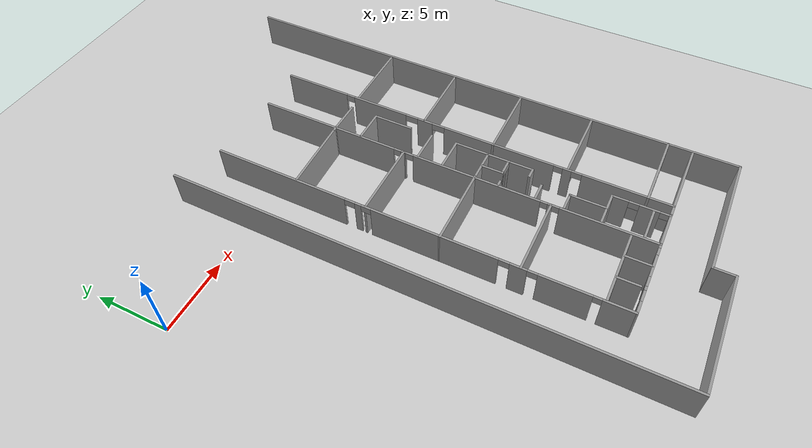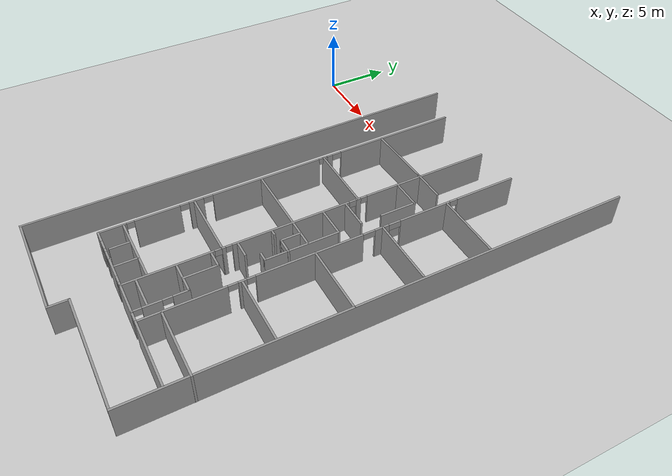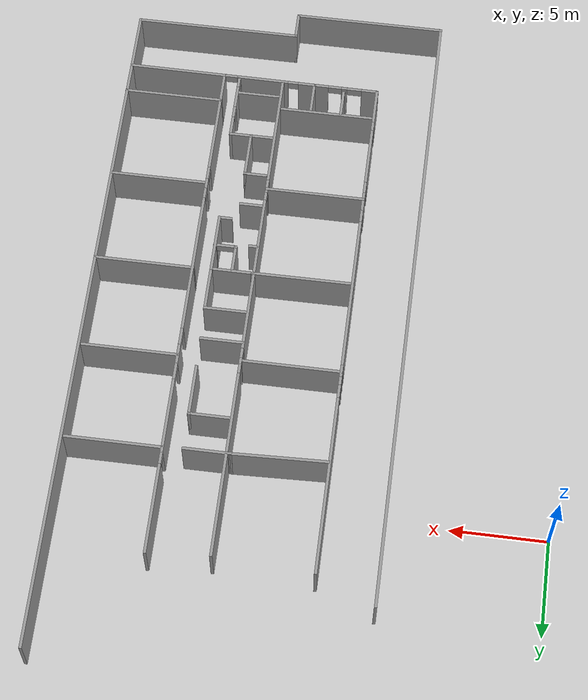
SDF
<sdf version="1.6">
 <world name="default">
  <model name="ground_plane">
   <static>1</static>
   <link name="link">
    <collision name="collision">
     <geometry><plane><normal>0 0 1</normal><size>100 100</size></plane></geometry>
     <surface><friction><ode><mu>100</mu><mu2>50</mu2></ode></friction></surface>
    </collision>
    <visual name="visual">
     <cast_shadows>0</cast_shadows>
     <geometry><plane><normal>0 0 1</normal><size>100 100</size></plane></geometry>
     <material>
      <script><uri>file://media/materials/scripts/gazebo.material</uri><name>Gazebo/Grey</name></script>
     </material>
    </visual>
   </link>
  </model>
  <model name="se1floor1">
   <pose>-5.19256 -0.852459 0 0 -0 0</pose>
   <link name="Wall_126">
    <pose>23.0675 -22.888 0 0 0 -0.005198</pose>
    <visual name="Wall_126_Visual_0">
     <pose>-6.2926 0 1.25 0 -0 0</pose>
     <geometry><box><size>0.915298 0.15 2.5</size></box></geometry>
     <material>
      <script><uri>file://media/materials/scripts/gazebo.material</uri><name>Gazebo/Grey</name></script>
      <ambient>1 1 1 1</ambient>
     </material>
     <meta><layer>0</layer></meta>
    </visual>
    <collision name="Wall_126_Collision_0">
     <geometry><box><size>0.915298 0.15 2.5</size></box></geometry>
     <pose>-6.2926 0 1.25 0 -0 0</pose>
    </collision>
    <visual name="Wall_126_Visual_1">
     <pose>-4.89972 0 1.25 0 -0 0</pose>
     <geometry><box><size>0.301764 0.15 2.5</size></box></geometry>
     <material>
      <script><uri>file://media/materials/scripts/gazebo.material</uri><name>Gazebo/Grey</name></script>
      <ambient>1 1 1 1</ambient>
     </material>
     <meta><layer>0</layer></meta>
    </visual>
    <collision name="Wall_126_Collision_1">
     <geometry><box><size>0.301764 0.15 2.5</size></box></geometry>
     <pose>-4.89972 0 1.25 0 -0 0</pose>
    </collision>
    <visual name="Wall_126_Visual_2">
     <pose>-3.21169 0 1.25 0 -0 0</pose>
     <geometry><box><size>1.6444 0.15 2.5</size></box></geometry>
     <material>
      <script><uri>file://media/materials/scripts/gazebo.material</uri><name>Gazebo/Grey</name></script>
      <ambient>1 1 1 1</ambient>
     </material>
     <meta><layer>0</layer></meta>
    </visual>
    <collision name="Wall_126_Collision_2">
     <geometry><box><size>1.6444 0.15 2.5</size></box></geometry>
     <pose>-3.21169 0 1.25 0 -0 0</pose>
    </collision>
    <visual name="Wall_126_Visual_3">
     <pose>-0.447541 0 1.25 0 -0 0</pose>
     <geometry><box><size>2.77781 0.15 2.5</size></box></geometry>
     <material>
      <script><uri>file://media/materials/scripts/gazebo.material</uri><name>Gazebo/Grey</name></script>
      <ambient>1 1 1 1</ambient>
     </material>
     <meta><layer>0</layer></meta>
    </visual>
    <collision name="Wall_126_Collision_3">
     <geometry><box><size>2.77781 0.15 2.5</size></box></geometry>
     <pose>-0.447541 0 1.25 0 -0 0</pose>
    </collision>
    <visual name="Wall_126_Visual_4">
     <pose>4.16859 0 1.25 0 -0 0</pose>
     <geometry><box><size>5.16332 0.15 2.5</size></box></geometry>
     <material>
      <script><uri>file://media/materials/scripts/gazebo.material</uri><name>Gazebo/Grey</name></script>
      <ambient>1 1 1 1</ambient>
     </material>
     <meta><layer>0</layer></meta>
    </visual>
    <collision name="Wall_126_Collision_4">
     <geometry><box><size>5.16332 0.15 2.5</size></box></geometry>
     <pose>4.16859 0 1.25 0 -0 0</pose>
    </collision>
    <visual name="Wall_126_Visual_5">
     <pose>-5.44278 0 2.25 0 -0 0</pose>
     <geometry><box><size>0.784347 0.15 0.5</size></box></geometry>
     <material>
      <script><uri>file://media/materials/scripts/gazebo.material</uri><name>Gazebo/Grey</name></script>
      <ambient>1 1 1 1</ambient>
     </material>
     <meta><layer>0</layer></meta>
    </visual>
    <collision name="Wall_126_Collision_5">
     <geometry><box><size>0.784347 0.15 0.5</size></box></geometry>
     <pose>-5.44278 0 2.25 0 -0 0</pose>
    </collision>
    <visual name="Wall_126_Visual_6">
     <pose>-4.39136 0 2.25 0 -0 0</pose>
     <geometry><box><size>0.714955 0.15 0.5</size></box></geometry>
     <material>
      <script><uri>file://media/materials/scripts/gazebo.material</uri><name>Gazebo/Grey</name></script>
      <ambient>1 1 1 1</ambient>
     </material>
     <meta><layer>0</layer></meta>
    </visual>
    <collision name="Wall_126_Collision_6">
     <geometry><box><size>0.714955 0.15 0.5</size></box></geometry>
     <pose>-4.39136 0 2.25 0 -0 0</pose>
    </collision>
    <visual name="Wall_126_Visual_7">
     <pose>-2.11297 0 2.25 0 -0 0</pose>
     <geometry><box><size>0.553041 0.15 0.5</size></box></geometry>
     <material>
      <script><uri>file://media/materials/scripts/gazebo.material</uri><name>Gazebo/Grey</name></script>
      <ambient>1 1 1 1</ambient>
     </material>
     <meta><layer>0</layer></meta>
    </visual>
    <collision name="Wall_126_Collision_7">
     <geometry><box><size>0.553041 0.15 0.5</size></box></geometry>
     <pose>-2.11297 0 2.25 0 -0 0</pose>
    </collision>
    <visual name="Wall_126_Visual_8">
     <pose>1.26415 0 2.25 0 -0 0</pose>
     <geometry><box><size>0.645563 0.15 0.5</size></box></geometry>
     <material>
      <script><uri>file://media/materials/scripts/gazebo.material</uri><name>Gazebo/Grey</name></script>
      <ambient>1 1 1 1</ambient>
     </material>
     <meta><layer>0</layer></meta>
    </visual>
    <collision name="Wall_126_Collision_8">
     <geometry><box><size>0.645563 0.15 0.5</size></box></geometry>
     <pose>1.26415 0 2.25 0 -0 0</pose>
    </collision>
   </link>
   <link name="Wall_129">
    <pose>16.3925 -9.03021 0 0 -0 1.5708</pose>
    <visual name="Wall_129_Visual_0">
     <pose>-12.8861 0 1.25 0 -0 0</pose>
     <geometry><box><size>1.97778 0.15 2.5</size></box></geometry>
     <material>
      <script><uri>file://media/materials/scripts/gazebo.material</uri><name>Gazebo/Grey</name></script>
      <ambient>1 1 1 1</ambient>
     </material>
     <meta><layer>0</layer></meta>
    </visual>
    <collision name="Wall_129_Collision_0">
     <geometry><box><size>1.97778 0.15 2.5</size></box></geometry>
     <pose>-12.8861 0 1.25 0 -0 0</pose>
    </collision>
    <visual name="Wall_129_Visual_1">
     <pose>-9.74712 0 1.25 0 -0 0</pose>
     <geometry><box><size>3.24038 0.15 2.5</size></box></geometry>
     <material>
      <script><uri>file://media/materials/scripts/gazebo.material</uri><name>Gazebo/Grey</name></script>
      <ambient>1 1 1 1</ambient>
     </material>
     <meta><layer>0</layer></meta>
    </visual>
    <collision name="Wall_129_Collision_1">
     <geometry><box><size>3.24038 0.15 2.5</size></box></geometry>
     <pose>-9.74712 0 1.25 0 -0 0</pose>
    </collision>
    <visual name="Wall_129_Visual_2">
     <pose>-6.94831 0 1.25 0 -0 0</pose>
     <geometry><box><size>1.0661 0.15 2.5</size></box></geometry>
     <material>
      <script><uri>file://media/materials/scripts/gazebo.material</uri><name>Gazebo/Grey</name></script>
      <ambient>1 1 1 1</ambient>
     </material>
     <meta><layer>0</layer></meta>
    </visual>
    <collision name="Wall_129_Collision_2">
     <geometry><box><size>1.0661 0.15 2.5</size></box></geometry>
     <pose>-6.94831 0 1.25 0 -0 0</pose>
    </collision>
    <visual name="Wall_129_Visual_3">
     <pose>-1.54153 0 1.25 0 -0 0</pose>
     <geometry><box><size>8.36381 0.15 2.5</size></box></geometry>
     <material>
      <script><uri>file://media/materials/scripts/gazebo.material</uri><name>Gazebo/Grey</name></script>
      <ambient>1 1 1 1</ambient>
     </material>
     <meta><layer>0</layer></meta>
    </visual>
    <collision name="Wall_129_Collision_3">
     <geometry><box><size>8.36381 0.15 2.5</size></box></geometry>
     <pose>-1.54153 0 1.25 0 -0 0</pose>
    </collision>
    <visual name="Wall_129_Visual_4">
     <pose>3.52985 0 1.25 0 -0 0</pose>
     <geometry><box><size>0.441575 0.15 2.5</size></box></geometry>
     <material>
      <script><uri>file://media/materials/scripts/gazebo.material</uri><name>Gazebo/Grey</name></script>
      <ambient>1 1 1 1</ambient>
     </material>
     <meta><layer>0</layer></meta>
    </visual>
    <collision name="Wall_129_Collision_4">
     <geometry><box><size>0.441575 0.15 2.5</size></box></geometry>
     <pose>3.52985 0 1.25 0 -0 0</pose>
    </collision>
    <visual name="Wall_129_Visual_5">
     <pose>9.1703 0 1.25 0 -0 0</pose>
     <geometry><box><size>9.4094 0.15 2.5</size></box></geometry>
     <material>
      <script><uri>file://media/materials/scripts/gazebo.material</uri><name>Gazebo/Grey</name></script>
      <ambient>1 1 1 1</ambient>
     </material>
     <meta><layer>0</layer></meta>
    </visual>
    <collision name="Wall_129_Collision_5">
     <geometry><box><size>9.4094 0.15 2.5</size></box></geometry>
     <pose>9.1703 0 1.25 0 -0 0</pose>
    </collision>
    <visual name="Wall_129_Visual_6">
     <pose>-11.6323 0 2.25 0 -0 0</pose>
     <geometry><box><size>0.52991 0.15 0.5</size></box></geometry>
     <material>
      <script><uri>file://media/materials/scripts/gazebo.material</uri><name>Gazebo/Grey</name></script>
      <ambient>1 1 1 1</ambient>
     </material>
     <meta><layer>0</layer></meta>
    </visual>
    <collision name="Wall_129_Collision_6">
     <geometry><box><size>0.52991 0.15 0.5</size></box></geometry>
     <pose>-11.6323 0 2.25 0 -0 0</pose>
    </collision>
    <visual name="Wall_129_Visual_7">
     <pose>-7.80415 0 2.25 0 -0 0</pose>
     <geometry><box><size>0.645563 0.15 0.5</size></box></geometry>
     <material>
      <script><uri>file://media/materials/scripts/gazebo.material</uri><name>Gazebo/Grey</name></script>
      <ambient>1 1 1 1</ambient>
     </material>
     <meta><layer>0</layer></meta>
    </visual>
    <collision name="Wall_129_Collision_7">
     <geometry><box><size>0.645563 0.15 0.5</size></box></geometry>
     <pose>-7.80415 0 2.25 0 -0 0</pose>
    </collision>
    <visual name="Wall_129_Visual_8">
     <pose>-6.06935 0 2.25 0 -0 0</pose>
     <geometry><box><size>0.691825 0.15 0.5</size></box></geometry>
     <material>
      <script><uri>file://media/materials/scripts/gazebo.material</uri><name>Gazebo/Grey</name></script>
      <ambient>1 1 1 1</ambient>
     </material>
     <meta><layer>0</layer></meta>
    </visual>
    <collision name="Wall_129_Collision_8">
     <geometry><box><size>0.691825 0.15 0.5</size></box></geometry>
     <pose>-6.06935 0 2.25 0 -0 0</pose>
    </collision>
    <visual name="Wall_129_Visual_9">
     <pose>2.97472 0 2.25 0 -0 0</pose>
     <geometry><box><size>0.668694 0.15 0.5</size></box></geometry>
     <material>
      <script><uri>file://media/materials/scripts/gazebo.material</uri><name>Gazebo/Grey</name></script>
      <ambient>1 1 1 1</ambient>
     </material>
     <meta><layer>0</layer></meta>
    </visual>
    <collision name="Wall_129_Collision_9">
     <geometry><box><size>0.668694 0.15 0.5</size></box></geometry>
     <pose>2.97472 0 2.25 0 -0 0</pose>
    </collision>
    <visual name="Wall_129_Visual_10">
     <pose>4.10812 0 2.25 0 -0 0</pose>
     <geometry><box><size>0.714955 0.15 0.5</size></box></geometry>
     <material>
      <script><uri>file://media/materials/scripts/gazebo.material</uri><name>Gazebo/Grey</name></script>
      <ambient>1 1 1 1</ambient>
     </material>
     <meta><layer>0</layer></meta>
    </visual>
    <collision name="Wall_129_Collision_10">
     <geometry><box><size>0.714955 0.15 0.5</size></box></geometry>
     <pose>4.10812 0 2.25 0 -0 0</pose>
    </collision>
   </link>
   <link name="Wall_132">
    <pose>21.5188 -9.17584 0 0 0 -1.5708</pose>
    <visual name="Wall_132_Visual_0">
     <pose>-8.8163 0 1.25 0 -0 0</pose>
     <geometry><box><size>9.86739 0.15 2.5</size></box></geometry>
     <material>
      <script><uri>file://media/materials/scripts/gazebo.material</uri><name>Gazebo/Grey</name></script>
      <ambient>1 1 1 1</ambient>
     </material>
     <meta><layer>0</layer></meta>
    </visual>
    <collision name="Wall_132_Collision_0">
     <geometry><box><size>9.86739 0.15 2.5</size></box></geometry>
     <pose>-8.8163 0 1.25 0 -0 0</pose>
    </collision>
    <visual name="Wall_132_Visual_1">
     <pose>-3.19552 0 1.25 0 -0 0</pose>
     <geometry><box><size>0.360618 0.15 2.5</size></box></geometry>
     <material>
      <script><uri>file://media/materials/scripts/gazebo.material</uri><name>Gazebo/Grey</name></script>
      <ambient>1 1 1 1</ambient>
     </material>
     <meta><layer>0</layer></meta>
    </visual>
    <collision name="Wall_132_Collision_1">
     <geometry><box><size>0.360618 0.15 2.5</size></box></geometry>
     <pose>-3.19552 0 1.25 0 -0 0</pose>
    </collision>
    <visual name="Wall_132_Visual_2">
     <pose>1.88165 0 1.25 0 -0 0</pose>
     <geometry><box><size>8.7339 0.15 2.5</size></box></geometry>
     <material>
      <script><uri>file://media/materials/scripts/gazebo.material</uri><name>Gazebo/Grey</name></script>
      <ambient>1 1 1 1</ambient>
     </material>
     <meta><layer>0</layer></meta>
    </visual>
    <collision name="Wall_132_Collision_2">
     <geometry><box><size>8.7339 0.15 2.5</size></box></geometry>
     <pose>1.88165 0 1.25 0 -0 0</pose>
    </collision>
    <visual name="Wall_132_Visual_3">
     <pose>6.83738 0 1.25 0 -0 0</pose>
     <geometry><box><size>0.256532 0.15 2.5</size></box></geometry>
     <material>
      <script><uri>file://media/materials/scripts/gazebo.material</uri><name>Gazebo/Grey</name></script>
      <ambient>1 1 1 1</ambient>
     </material>
     <meta><layer>0</layer></meta>
    </visual>
    <collision name="Wall_132_Collision_3">
     <geometry><box><size>0.256532 0.15 2.5</size></box></geometry>
     <pose>6.83738 0 1.25 0 -0 0</pose>
    </collision>
    <visual name="Wall_132_Visual_4">
     <pose>10.6112 0 1.25 0 -0 0</pose>
     <geometry><box><size>6.27757 0.15 2.5</size></box></geometry>
     <material>
      <script><uri>file://media/materials/scripts/gazebo.material</uri><name>Gazebo/Grey</name></script>
      <ambient>1 1 1 1</ambient>
     </material>
     <meta><layer>0</layer></meta>
    </visual>
    <collision name="Wall_132_Collision_4">
     <geometry><box><size>6.27757 0.15 2.5</size></box></geometry>
     <pose>10.6112 0 1.25 0 -0 0</pose>
    </collision>
    <visual name="Wall_132_Visual_5">
     <pose>-3.62922 0 2.25 0 -0 0</pose>
     <geometry><box><size>0.50678 0.15 0.5</size></box></geometry>
     <material>
      <script><uri>file://media/materials/scripts/gazebo.material</uri><name>Gazebo/Grey</name></script>
      <ambient>1 1 1 1</ambient>
     </material>
     <meta><layer>0</layer></meta>
    </visual>
    <collision name="Wall_132_Collision_5">
     <geometry><box><size>0.50678 0.15 0.5</size></box></geometry>
     <pose>-3.62922 0 2.25 0 -0 0</pose>
    </collision>
    <visual name="Wall_132_Visual_6">
     <pose>-2.75025 0 2.25 0 -0 0</pose>
     <geometry><box><size>0.52991 0.15 0.5</size></box></geometry>
     <material>
      <script><uri>file://media/materials/scripts/gazebo.material</uri><name>Gazebo/Grey</name></script>
      <ambient>1 1 1 1</ambient>
     </material>
     <meta><layer>0</layer></meta>
    </visual>
    <collision name="Wall_132_Collision_6">
     <geometry><box><size>0.52991 0.15 0.5</size></box></geometry>
     <pose>-2.75025 0 2.25 0 -0 0</pose>
    </collision>
    <visual name="Wall_132_Visual_7">
     <pose>6.47886 0 2.25 0 -0 0</pose>
     <geometry><box><size>0.460518 0.15 0.5</size></box></geometry>
     <material>
      <script><uri>file://media/materials/scripts/gazebo.material</uri><name>Gazebo/Grey</name></script>
      <ambient>1 1 1 1</ambient>
     </material>
     <meta><layer>0</layer></meta>
    </visual>
    <collision name="Wall_132_Collision_7">
     <geometry><box><size>0.460518 0.15 0.5</size></box></geometry>
     <pose>6.47886 0 2.25 0 -0 0</pose>
    </collision>
    <visual name="Wall_132_Visual_8">
     <pose>7.21904 0 2.25 0 -0 0</pose>
     <geometry><box><size>0.50678 0.15 0.5</size></box></geometry>
     <material>
      <script><uri>file://media/materials/scripts/gazebo.material</uri><name>Gazebo/Grey</name></script>
      <ambient>1 1 1 1</ambient>
     </material>
     <meta><layer>0</layer></meta>
    </visual>
    <collision name="Wall_132_Collision_8">
     <geometry><box><size>0.50678 0.15 0.5</size></box></geometry>
     <pose>7.21904 0 2.25 0 -0 0</pose>
    </collision>
   </link>
   <link name="Wall_134">
    <pose>24.7154 -9.06281 0 0 0 -1.5708</pose>
    <visual name="Wall_134_Visual_0">
     <pose>-11.5152 0 1.25 0 -0 0</pose>
     <geometry><box><size>4.71959 0.15 2.5</size></box></geometry>
     <material>
      <script><uri>file://media/materials/scripts/gazebo.material</uri><name>Gazebo/Grey</name></script>
      <ambient>1 1 1 1</ambient>
     </material>
     <meta><layer>0</layer></meta>
    </visual>
    <collision name="Wall_134_Collision_0">
     <geometry><box><size>4.71959 0.15 2.5</size></box></geometry>
     <pose>-11.5152 0 1.25 0 -0 0</pose>
    </collision>
    <visual name="Wall_134_Visual_1">
     <pose>-6.52963 0 1.25 0 -0 0</pose>
     <geometry><box><size>4.01762 0.15 2.5</size></box></geometry>
     <material>
      <script><uri>file://media/materials/scripts/gazebo.material</uri><name>Gazebo/Grey</name></script>
      <ambient>1 1 1 1</ambient>
     </material>
     <meta><layer>0</layer></meta>
    </visual>
    <collision name="Wall_134_Collision_1">
     <geometry><box><size>4.01762 0.15 2.5</size></box></geometry>
     <pose>-6.52963 0 1.25 0 -0 0</pose>
    </collision>
    <visual name="Wall_134_Visual_2">
     <pose>-3.08023 0 1.25 0 -0 0</pose>
     <geometry><box><size>1.0812 0.15 2.5</size></box></geometry>
     <material>
      <script><uri>file://media/materials/scripts/gazebo.material</uri><name>Gazebo/Grey</name></script>
      <ambient>1 1 1 1</ambient>
     </material>
     <meta><layer>0</layer></meta>
    </visual>
    <collision name="Wall_134_Collision_2">
     <geometry><box><size>1.0812 0.15 2.5</size></box></geometry>
     <pose>-3.08023 0 1.25 0 -0 0</pose>
    </collision>
    <visual name="Wall_134_Visual_3">
     <pose>2.23378 0 1.25 0 -0 0</pose>
     <geometry><box><size>7.74681 0.15 2.5</size></box></geometry>
     <material>
      <script><uri>file://media/materials/scripts/gazebo.material</uri><name>Gazebo/Grey</name></script>
      <ambient>1 1 1 1</ambient>
     </material>
     <meta><layer>0</layer></meta>
    </visual>
    <collision name="Wall_134_Collision_3">
     <geometry><box><size>7.74681 0.15 2.5</size></box></geometry>
     <pose>2.23378 0 1.25 0 -0 0</pose>
    </collision>
    <visual name="Wall_134_Visual_4">
     <pose>6.99667 0 1.25 0 -0 0</pose>
     <geometry><box><size>0.580358 0.15 2.5</size></box></geometry>
     <material>
      <script><uri>file://media/materials/scripts/gazebo.material</uri><name>Gazebo/Grey</name></script>
      <ambient>1 1 1 1</ambient>
     </material>
     <meta><layer>0</layer></meta>
    </visual>
    <collision name="Wall_134_Collision_4">
     <geometry><box><size>0.580358 0.15 2.5</size></box></geometry>
     <pose>6.99667 0 1.25 0 -0 0</pose>
    </collision>
    <visual name="Wall_134_Visual_5">
     <pose>10.9268 0 1.25 0 -0 0</pose>
     <geometry><box><size>5.89633 0.15 2.5</size></box></geometry>
     <material>
      <script><uri>file://media/materials/scripts/gazebo.material</uri><name>Gazebo/Grey</name></script>
      <ambient>1 1 1 1</ambient>
     </material>
     <meta><layer>0</layer></meta>
    </visual>
    <collision name="Wall_134_Collision_5">
     <geometry><box><size>5.89633 0.15 2.5</size></box></geometry>
     <pose>10.9268 0 1.25 0 -0 0</pose>
    </collision>
    <visual name="Wall_134_Visual_6">
     <pose>-8.84693 0 2.25 0 -0 0</pose>
     <geometry><box><size>0.616972 0.15 0.5</size></box></geometry>
     <material>
      <script><uri>file://media/materials/scripts/gazebo.material</uri><name>Gazebo/Grey</name></script>
      <ambient>1 1 1 1</ambient>
     </material>
     <meta><layer>0</layer></meta>
    </visual>
    <collision name="Wall_134_Collision_6">
     <geometry><box><size>0.616972 0.15 0.5</size></box></geometry>
     <pose>-8.84693 0 2.25 0 -0 0</pose>
    </collision>
    <visual name="Wall_134_Visual_7">
     <pose>-4.07083 0 2.25 0 -0 0</pose>
     <geometry><box><size>0.9 0.15 0.5</size></box></geometry>
     <material>
      <script><uri>file://media/materials/scripts/gazebo.material</uri><name>Gazebo/Grey</name></script>
      <ambient>1 1 1 1</ambient>
     </material>
     <meta><layer>0</layer></meta>
    </visual>
    <collision name="Wall_134_Collision_7">
     <geometry><box><size>0.9 0.15 0.5</size></box></geometry>
     <pose>-4.07083 0 2.25 0 -0 0</pose>
    </collision>
    <visual name="Wall_134_Visual_8">
     <pose>-2.08963 0 2.25 0 -0 0</pose>
     <geometry><box><size>0.9 0.15 0.5</size></box></geometry>
     <material>
      <script><uri>file://media/materials/scripts/gazebo.material</uri><name>Gazebo/Grey</name></script>
      <ambient>1 1 1 1</ambient>
     </material>
     <meta><layer>0</layer></meta>
    </visual>
    <collision name="Wall_134_Collision_8">
     <geometry><box><size>0.9 0.15 0.5</size></box></geometry>
     <pose>-2.08963 0 2.25 0 -0 0</pose>
    </collision>
    <visual name="Wall_134_Visual_9">
     <pose>6.40684 0 2.25 0 -0 0</pose>
     <geometry><box><size>0.599302 0.15 0.5</size></box></geometry>
     <material>
      <script><uri>file://media/materials/scripts/gazebo.material</uri><name>Gazebo/Grey</name></script>
      <ambient>1 1 1 1</ambient>
     </material>
     <meta><layer>0</layer></meta>
    </visual>
    <collision name="Wall_134_Collision_9">
     <geometry><box><size>0.599302 0.15 0.5</size></box></geometry>
     <pose>6.40684 0 2.25 0 -0 0</pose>
    </collision>
    <visual name="Wall_134_Visual_10">
     <pose>7.63276 0 2.25 0 -0 0</pose>
     <geometry><box><size>0.691825 0.15 0.5</size></box></geometry>
     <material>
      <script><uri>file://media/materials/scripts/gazebo.material</uri><name>Gazebo/Grey</name></script>
      <ambient>1 1 1 1</ambient>
     </material>
     <meta><layer>0</layer></meta>
    </visual>
    <collision name="Wall_134_Collision_10">
     <geometry><box><size>0.691825 0.15 0.5</size></box></geometry>
     <pose>7.63276 0 2.25 0 -0 0</pose>
    </collision>
   </link>
   <link name="Wall_137">
    <collision name="Wall_137_Collision">
     <geometry><box><size>5.02582 0.15 2.5</size></box></geometry>
     <pose>0 0 1.25 0 -0 0</pose>
    </collision>
    <visual name="Wall_137_Visual">
     <pose>0 0 1.25 0 -0 0</pose>
     <geometry><box><size>5.02582 0.15 2.5</size></box></geometry>
     <material>
      <script><uri>file://media/materials/scripts/gazebo.material</uri><name>Gazebo/Grey</name></script>
      <ambient>1 1 1 1</ambient>
     </material>
     <meta><layer>0</layer></meta>
    </visual>
    <pose>18.9104 -0.95308 0 0 -0 0.033214</pose>
   </link>
   <link name="Wall_139">
    <collision name="Wall_139_Collision">
     <geometry><box><size>5.25 0.15 2.5</size></box></geometry>
     <pose>0 0 1.25 0 -0 0</pose>
    </collision>
    <visual name="Wall_139_Visual">
     <pose>0 0 1.25 0 -0 0</pose>
     <geometry><box><size>5.25 0.15 2.5</size></box></geometry>
     <material>
      <script><uri>file://media/materials/scripts/gazebo.material</uri><name>Gazebo/Grey</name></script>
      <ambient>1 1 1 1</ambient>
     </material>
     <meta><layer>0</layer></meta>
    </visual>
    <pose>18.9425 -5.99765 0 0 -0 0</pose>
   </link>
   <link name="Wall_141">
    <collision name="Wall_141_Collision">
     <geometry><box><size>5.3657 0.15 2.5</size></box></geometry>
     <pose>0 0 1.25 0 -0 0</pose>
    </collision>
    <visual name="Wall_141_Visual">
     <pose>0 0 1.25 0 -0 0</pose>
     <geometry><box><size>5.3657 0.15 2.5</size></box></geometry>
     <material>
      <script><uri>file://media/materials/scripts/gazebo.material</uri><name>Gazebo/Grey</name></script>
      <ambient>1 1 1 1</ambient>
     </material>
     <meta><layer>0</layer></meta>
    </visual>
    <pose>19.0003 -11.0311 0 0 -0 0.004435</pose>
   </link>
   <link name="Wall_143">
    <collision name="Wall_143_Collision">
     <geometry><box><size>5.25 0.15 2.5</size></box></geometry>
     <pose>0 0 1.25 0 -0 0</pose>
    </collision>
    <visual name="Wall_143_Visual">
     <pose>0 0 1.25 0 -0 0</pose>
     <geometry><box><size>5.25 0.15 2.5</size></box></geometry>
     <material>
      <script><uri>file://media/materials/scripts/gazebo.material</uri><name>Gazebo/Grey</name></script>
      <ambient>1 1 1 1</ambient>
     </material>
     <meta><layer>0</layer></meta>
    </visual>
    <pose>18.9537 -16.1141 0 0 -0 0</pose>
   </link>
   <link name="Wall_146">
    <collision name="Wall_146_Collision">
     <geometry><box><size>5 0.15 2.5</size></box></geometry>
     <pose>0 0 1.25 0 -0 0</pose>
    </collision>
    <visual name="Wall_146_Visual">
     <pose>0 0 1.25 0 -0 0</pose>
     <geometry><box><size>5 0.15 2.5</size></box></geometry>
     <material>
      <script><uri>file://media/materials/scripts/gazebo.material</uri><name>Gazebo/Grey</name></script>
      <ambient>1 1 1 1</ambient>
     </material>
     <meta><layer>0</layer></meta>
    </visual>
    <pose>18.9294 -21.1528 0 0 -0 0</pose>
   </link>
   <link name="Wall_150">
    <collision name="Wall_150_Collision">
     <geometry><box><size>5 0.15 2.5</size></box></geometry>
     <pose>0 0 1.25 0 -0 0</pose>
    </collision>
    <visual name="Wall_150_Visual">
     <pose>0 0 1.25 0 -0 0</pose>
     <geometry><box><size>5 0.15 2.5</size></box></geometry>
     <material>
      <script><uri>file://media/materials/scripts/gazebo.material</uri><name>Gazebo/Grey</name></script>
      <ambient>1 1 1 1</ambient>
     </material>
     <meta><layer>0</layer></meta>
    </visual>
    <pose>27.1987 -0.789925 0 0 -0 0</pose>
   </link>
   <link name="Wall_152">
    <collision name="Wall_152_Collision">
     <geometry><box><size>5 0.15 2.5</size></box></geometry>
     <pose>0 0 1.25 0 -0 0</pose>
    </collision>
    <visual name="Wall_152_Visual">
     <pose>0 0 1.25 0 -0 0</pose>
     <geometry><box><size>5 0.15 2.5</size></box></geometry>
     <material>
      <script><uri>file://media/materials/scripts/gazebo.material</uri><name>Gazebo/Grey</name></script>
      <ambient>1 1 1 1</ambient>
     </material>
     <meta><layer>0</layer></meta>
    </visual>
    <pose>27.1987 -5.91627 0 0 -0 0</pose>
   </link>
   <link name="Wall_154">
    <collision name="Wall_154_Collision">
     <geometry><box><size>5 0.15 2.5</size></box></geometry>
     <pose>0 0 1.25 0 -0 0</pose>
    </collision>
    <visual name="Wall_154_Visual">
     <pose>0 0 1.25 0 -0 0</pose>
     <geometry><box><size>5 0.15 2.5</size></box></geometry>
     <material>
      <script><uri>file://media/materials/scripts/gazebo.material</uri><name>Gazebo/Grey</name></script>
      <ambient>1 1 1 1</ambient>
     </material>
     <meta><layer>0</layer></meta>
    </visual>
    <pose>27.28 -16.0876 0 0 -0 0</pose>
   </link>
   <link name="Wall_156">
    <collision name="Wall_156_Collision">
     <geometry><box><size>5.25 0.15 2.5</size></box></geometry>
     <pose>0 0 1.25 0 -0 0</pose>
    </collision>
    <visual name="Wall_156_Visual">
     <pose>0 0 1.25 0 -0 0</pose>
     <geometry><box><size>5.25 0.15 2.5</size></box></geometry>
     <material>
      <script><uri>file://media/materials/scripts/gazebo.material</uri><name>Gazebo/Grey</name></script>
      <ambient>1 1 1 1</ambient>
     </material>
     <meta><layer>0</layer></meta>
    </visual>
    <pose>27.2423 -10.9613 0 0 -0 0</pose>
   </link>
   <link name="Wall_158">
    <collision name="Wall_158_Collision">
     <geometry><box><size>5.25 0.15 2.5</size></box></geometry>
     <pose>0 0 1.25 0 -0 0</pose>
    </collision>
    <visual name="Wall_158_Visual">
     <pose>0 0 1.25 0 -0 0</pose>
     <geometry><box><size>5.25 0.15 2.5</size></box></geometry>
     <material>
      <script><uri>file://media/materials/scripts/gazebo.material</uri><name>Gazebo/Grey</name></script>
      <ambient>1 1 1 1</ambient>
     </material>
     <meta><layer>0</layer></meta>
    </visual>
    <pose>27.2625 -21.2953 0 0 -0 0</pose>
   </link>
   <link name="Wall_160">
    <collision name="Wall_160_Collision">
     <geometry><box><size>1.25 0.15 2.5</size></box></geometry>
     <pose>0 0 1.25 0 -0 0</pose>
    </collision>
    <visual name="Wall_160_Visual">
     <pose>0 0 1.25 0 -0 0</pose>
     <geometry><box><size>1.25 0.15 2.5</size></box></geometry>
     <material>
      <script><uri>file://media/materials/scripts/gazebo.material</uri><name>Gazebo/Grey</name></script>
      <ambient>1 1 1 1</ambient>
     </material>
     <meta><layer>0</layer></meta>
    </visual>
    <pose>22.2316 -16.9013 0 0 -0 0</pose>
   </link>
   <link name="Wall_161">
    <collision name="Wall_161_Collision">
     <geometry><box><size>2.5 0.15 2.5</size></box></geometry>
     <pose>0 0 1.25 0 -0 0</pose>
    </collision>
    <visual name="Wall_161_Visual">
     <pose>0 0 1.25 0 -0 0</pose>
     <geometry><box><size>2.5 0.15 2.5</size></box></geometry>
     <material>
      <script><uri>file://media/materials/scripts/gazebo.material</uri><name>Gazebo/Grey</name></script>
      <ambient>1 1 1 1</ambient>
     </material>
     <meta><layer>0</layer></meta>
    </visual>
    <pose>22.7816 -18.0763 0 0 0 -1.5708</pose>
   </link>
   <link name="Wall_162">
    <collision name="Wall_162_Collision">
     <geometry><box><size>1.25 0.15 2.5</size></box></geometry>
     <pose>0 0 1.25 0 -0 0</pose>
    </collision>
    <visual name="Wall_162_Visual">
     <pose>0 0 1.25 0 -0 0</pose>
     <geometry><box><size>1.25 0.15 2.5</size></box></geometry>
     <material>
      <script><uri>file://media/materials/scripts/gazebo.material</uri><name>Gazebo/Grey</name></script>
      <ambient>1 1 1 1</ambient>
     </material>
     <meta><layer>0</layer></meta>
    </visual>
    <pose>23.3316 -19.2513 0 0 -0 0</pose>
   </link>
   <link name="Wall_163">
    <pose>23.8816 -21.0513 0 0 0 -1.5708</pose>
    <visual name="Wall_163_Visual_0">
     <pose>-1.31066 0 1.25 0 -0 0</pose>
     <geometry><box><size>1.12869 0.15 2.5</size></box></geometry>
     <material>
      <script><uri>file://media/materials/scripts/gazebo.material</uri><name>Gazebo/Grey</name></script>
      <ambient>1 1 1 1</ambient>
     </material>
     <meta><layer>0</layer></meta>
    </visual>
    <collision name="Wall_163_Collision_0">
     <geometry><box><size>1.12869 0.15 2.5</size></box></geometry>
     <pose>-1.31066 0 1.25 0 -0 0</pose>
    </collision>
    <visual name="Wall_163_Visual_1">
     <pose>0.559519 0 1.25 0 -0 0</pose>
     <geometry><box><size>1.27428 0.15 2.5</size></box></geometry>
     <material>
      <script><uri>file://media/materials/scripts/gazebo.material</uri><name>Gazebo/Grey</name></script>
      <ambient>1 1 1 1</ambient>
     </material>
     <meta><layer>0</layer></meta>
    </visual>
    <collision name="Wall_163_Collision_1">
     <geometry><box><size>1.27428 0.15 2.5</size></box></geometry>
     <pose>0.559519 0 1.25 0 -0 0</pose>
    </collision>
    <visual name="Wall_163_Visual_2">
     <pose>1.81235 0 1.25 0 -0 0</pose>
     <geometry><box><size>0.125303 0.15 2.5</size></box></geometry>
     <material>
      <script><uri>file://media/materials/scripts/gazebo.material</uri><name>Gazebo/Grey</name></script>
      <ambient>1 1 1 1</ambient>
     </material>
     <meta><layer>0</layer></meta>
    </visual>
    <collision name="Wall_163_Collision_2">
     <geometry><box><size>0.125303 0.15 2.5</size></box></geometry>
     <pose>1.81235 0 1.25 0 -0 0</pose>
    </collision>
    <visual name="Wall_163_Visual_3">
     <pose>-0.411966 0 2.25 0 -0 0</pose>
     <geometry><box><size>0.668694 0.15 0.5</size></box></geometry>
     <material>
      <script><uri>file://media/materials/scripts/gazebo.material</uri><name>Gazebo/Grey</name></script>
      <ambient>1 1 1 1</ambient>
     </material>
     <meta><layer>0</layer></meta>
    </visual>
    <collision name="Wall_163_Collision_3">
     <geometry><box><size>0.668694 0.15 0.5</size></box></geometry>
     <pose>-0.411966 0 2.25 0 -0 0</pose>
    </collision>
    <visual name="Wall_163_Visual_4">
     <pose>1.47318 0 2.25 0 -0 0</pose>
     <geometry><box><size>0.553041 0.15 0.5</size></box></geometry>
     <material>
      <script><uri>file://media/materials/scripts/gazebo.material</uri><name>Gazebo/Grey</name></script>
      <ambient>1 1 1 1</ambient>
     </material>
     <meta><layer>0</layer></meta>
    </visual>
    <collision name="Wall_163_Collision_4">
     <geometry><box><size>0.553041 0.15 0.5</size></box></geometry>
     <pose>1.47318 0 2.25 0 -0 0</pose>
    </collision>
   </link>
   <link name="Wall_165">
    <collision name="Wall_165_Collision">
     <geometry><box><size>1.25 0.15 2.5</size></box></geometry>
     <pose>0 0 1.25 0 -0 0</pose>
    </collision>
    <visual name="Wall_165_Visual">
     <pose>0 0 1.25 0 -0 0</pose>
     <geometry><box><size>1.25 0.15 2.5</size></box></geometry>
     <material>
      <script><uri>file://media/materials/scripts/gazebo.material</uri><name>Gazebo/Grey</name></script>
      <ambient>1 1 1 1</ambient>
     </material>
     <meta><layer>0</layer></meta>
    </visual>
    <pose>22.2051 -19.2539 0 0 -0 0</pose>
   </link>
   <link name="Wall_167">
    <collision name="Wall_167_Collision">
     <geometry><box><size>2.25 0.15 2.5</size></box></geometry>
     <pose>0 0 1.25 0 -0 0</pose>
    </collision>
    <visual name="Wall_167_Visual">
     <pose>0 0 1.25 0 -0 0</pose>
     <geometry><box><size>2.25 0.15 2.5</size></box></geometry>
     <material>
      <script><uri>file://media/materials/scripts/gazebo.material</uri><name>Gazebo/Grey</name></script>
      <ambient>1 1 1 1</ambient>
     </material>
     <meta><layer>0</layer></meta>
    </visual>
    <pose>22.6937 -21.8923 0 0 -0 0</pose>
   </link>
   <link name="Wall_169">
    <collision name="Wall_169_Collision">
     <geometry><box><size>1.25 0.15 2.5</size></box></geometry>
     <pose>0 0 1.25 0 -0 0</pose>
    </collision>
    <visual name="Wall_169_Visual">
     <pose>0 0 1.25 0 -0 0</pose>
     <geometry><box><size>1.25 0.15 2.5</size></box></geometry>
     <material>
      <script><uri>file://media/materials/scripts/gazebo.material</uri><name>Gazebo/Grey</name></script>
      <ambient>1 1 1 1</ambient>
     </material>
     <meta><layer>0</layer></meta>
    </visual>
    <pose>22.195 -15.0401 0 0 -0 3.14159</pose>
   </link>
   <link name="Wall_172">
    <collision name="Wall_172_Collision">
     <geometry><box><size>0.75 0.15 2.5</size></box></geometry>
     <pose>0 0 1.25 0 -0 0</pose>
    </collision>
    <visual name="Wall_172_Visual">
     <pose>0 0 1.25 0 -0 0</pose>
     <geometry><box><size>0.75 0.15 2.5</size></box></geometry>
     <material>
      <script><uri>file://media/materials/scripts/gazebo.material</uri><name>Gazebo/Grey</name></script>
      <ambient>1 1 1 1</ambient>
     </material>
     <meta><layer>0</layer></meta>
    </visual>
    <pose>23.4426 -14.0918 0 0 -0 0</pose>
   </link>
   <link name="Wall_173">
    <collision name="Wall_173_Collision">
     <geometry><box><size>5.5 0.15 2.5</size></box></geometry>
     <pose>0 0 1.25 0 -0 0</pose>
    </collision>
    <visual name="Wall_173_Visual">
     <pose>0 0 1.25 0 -0 0</pose>
     <geometry><box><size>5.5 0.15 2.5</size></box></geometry>
     <material>
      <script><uri>file://media/materials/scripts/gazebo.material</uri><name>Gazebo/Grey</name></script>
      <ambient>1 1 1 1</ambient>
     </material>
     <meta><layer>0</layer></meta>
    </visual>
    <pose>23.7426 -11.4168 0 0 -0 1.5708</pose>
   </link>
   <link name="Wall_174">
    <collision name="Wall_174_Collision">
     <geometry><box><size>2.25 0.15 2.5</size></box></geometry>
     <pose>0 0 1.25 0 -0 0</pose>
    </collision>
    <visual name="Wall_174_Visual">
     <pose>0 0 1.25 0 -0 0</pose>
     <geometry><box><size>2.25 0.15 2.5</size></box></geometry>
     <material>
      <script><uri>file://media/materials/scripts/gazebo.material</uri><name>Gazebo/Grey</name></script>
      <ambient>1 1 1 1</ambient>
     </material>
     <meta><layer>0</layer></meta>
    </visual>
    <pose>22.6926 -8.74176 0 0 -0 3.14159</pose>
   </link>
   <link name="Wall_176">
    <collision name="Wall_176_Collision">
     <geometry><box><size>0.5 0.15 2.5</size></box></geometry>
     <pose>0 0 1.25 0 -0 0</pose>
    </collision>
    <visual name="Wall_176_Visual">
     <pose>0 0 1.25 0 -0 0</pose>
     <geometry><box><size>0.5 0.15 2.5</size></box></geometry>
     <material>
      <script><uri>file://media/materials/scripts/gazebo.material</uri><name>Gazebo/Grey</name></script>
      <ambient>1 1 1 1</ambient>
     </material>
     <meta><layer>0</layer></meta>
    </visual>
    <pose>21.7575 -12.5928 0 0 -0 0</pose>
   </link>
   <link name="Wall_178">
    <collision name="Wall_178_Collision">
     <geometry><box><size>1.5 0.15 2.5</size></box></geometry>
     <pose>0 0 1.25 0 -0 0</pose>
    </collision>
    <visual name="Wall_178_Visual">
     <pose>0 0 1.25 0 -0 0</pose>
     <geometry><box><size>1.5 0.15 2.5</size></box></geometry>
     <material>
      <script><uri>file://media/materials/scripts/gazebo.material</uri><name>Gazebo/Grey</name></script>
      <ambient>1 1 1 1</ambient>
     </material>
     <meta><layer>0</layer></meta>
    </visual>
    <pose>22.6532 -11.7689 0 0 0 -1.5708</pose>
   </link>
   <link name="Wall_179">
    <pose>23.2032 -12.4439 0 0 -0 0</pose>
    <visual name="Wall_179_Visual_0">
     <pose>-0.538272 0 1.25 0 -0 0</pose>
     <geometry><box><size>0.173455 0.15 2.5</size></box></geometry>
     <material>
      <script><uri>file://media/materials/scripts/gazebo.material</uri><name>Gazebo/Grey</name></script>
      <ambient>1 1 1 1</ambient>
     </material>
     <meta><layer>0</layer></meta>
    </visual>
    <collision name="Wall_179_Collision_0">
     <geometry><box><size>0.173455 0.15 2.5</size></box></geometry>
     <pose>-0.538272 0 1.25 0 -0 0</pose>
    </collision>
    <visual name="Wall_179_Visual_1">
     <pose>0.536728 0 1.25 0 -0 0</pose>
     <geometry><box><size>0.176545 0.15 2.5</size></box></geometry>
     <material>
      <script><uri>file://media/materials/scripts/gazebo.material</uri><name>Gazebo/Grey</name></script>
      <ambient>1 1 1 1</ambient>
     </material>
     <meta><layer>0</layer></meta>
    </visual>
    <collision name="Wall_179_Collision_1">
     <geometry><box><size>0.176545 0.15 2.5</size></box></geometry>
     <pose>0.536728 0 1.25 0 -0 0</pose>
    </collision>
    <visual name="Wall_179_Visual_2">
     <pose>-0.001545 0 2.25 0 -0 0</pose>
     <geometry><box><size>0.9 0.15 0.5</size></box></geometry>
     <material>
      <script><uri>file://media/materials/scripts/gazebo.material</uri><name>Gazebo/Grey</name></script>
      <ambient>1 1 1 1</ambient>
     </material>
     <meta><layer>0</layer></meta>
    </visual>
    <collision name="Wall_179_Collision_2">
     <geometry><box><size>0.9 0.15 0.5</size></box></geometry>
     <pose>-0.001545 0 2.25 0 -0 0</pose>
    </collision>
   </link>
   <link name="Wall_181">
    <collision name="Wall_181_Collision">
     <geometry><box><size>2.25 0.15 2.5</size></box></geometry>
     <pose>0 0 1.25 0 -0 0</pose>
    </collision>
    <visual name="Wall_181_Visual">
     <pose>0 0 1.25 0 -0 0</pose>
     <geometry><box><size>2.25 0.15 2.5</size></box></geometry>
     <material>
      <script><uri>file://media/materials/scripts/gazebo.material</uri><name>Gazebo/Grey</name></script>
      <ambient>1 1 1 1</ambient>
     </material>
     <meta><layer>0</layer></meta>
    </visual>
    <pose>22.635 -11.0195 0 0 -0 0</pose>
   </link>
   <link name="Wall_190">
    <collision name="Wall_190_Collision">
     <geometry><box><size>2.5 0.15 2.5</size></box></geometry>
     <pose>0 0 1.25 0 -0 0</pose>
    </collision>
    <visual name="Wall_190_Visual">
     <pose>0 0 1.25 0 -0 0</pose>
     <geometry><box><size>2.5 0.15 2.5</size></box></geometry>
     <material>
      <script><uri>file://media/materials/scripts/gazebo.material</uri><name>Gazebo/Grey</name></script>
      <ambient>1 1 1 1</ambient>
     </material>
     <meta><layer>0</layer></meta>
    </visual>
    <pose>22.4989 -0.872123 0 0 -0 0</pose>
   </link>
   <link name="Wall_192">
    <collision name="Wall_192_Collision">
     <geometry><box><size>2.25 0.15 2.5</size></box></geometry>
     <pose>0 0 1.25 0 -0 0</pose>
    </collision>
    <visual name="Wall_192_Visual">
     <pose>0 0 1.25 0 -0 0</pose>
     <geometry><box><size>2.25 0.15 2.5</size></box></geometry>
     <material>
      <script><uri>file://media/materials/scripts/gazebo.material</uri><name>Gazebo/Grey</name></script>
      <ambient>1 1 1 1</ambient>
     </material>
     <meta><layer>0</layer></meta>
    </visual>
    <pose>22.6325 -2.77337 0 0 -0 0</pose>
   </link>
   <link name="Wall_193">
    <collision name="Wall_193_Collision">
     <geometry><box><size>2.75 0.15 2.5</size></box></geometry>
     <pose>0 0 1.25 0 -0 0</pose>
    </collision>
    <visual name="Wall_193_Visual">
     <pose>0 0 1.25 0 -0 0</pose>
     <geometry><box><size>2.75 0.15 2.5</size></box></geometry>
     <material>
      <script><uri>file://media/materials/scripts/gazebo.material</uri><name>Gazebo/Grey</name></script>
      <ambient>1 1 1 1</ambient>
     </material>
     <meta><layer>0</layer></meta>
    </visual>
    <pose>23.6825 -4.07337 0 0 0 -1.5708</pose>
   </link>
   <link name="Wall_195">
    <collision name="Wall_195_Collision">
     <geometry><box><size>2.25 0.15 2.5</size></box></geometry>
     <pose>0 0 1.25 0 -0 0</pose>
    </collision>
    <visual name="Wall_195_Visual">
     <pose>0 0 1.25 0 -0 0</pose>
     <geometry><box><size>2.25 0.15 2.5</size></box></geometry>
     <material>
      <script><uri>file://media/materials/scripts/gazebo.material</uri><name>Gazebo/Grey</name></script>
      <ambient>1 1 1 1</ambient>
     </material>
     <meta><layer>0</layer></meta>
    </visual>
    <pose>22.6325 -6.99482 0 0 -0 0</pose>
   </link>
   <link name="Wall_201">
    <collision name="Wall_201_Collision">
     <geometry><box><size>1.5 0.15 2.5</size></box></geometry>
     <pose>0 0 1.25 0 -0 0</pose>
    </collision>
    <visual name="Wall_201_Visual">
     <pose>0 0 1.25 0 -0 0</pose>
     <geometry><box><size>1.5 0.15 2.5</size></box></geometry>
     <material>
      <script><uri>file://media/materials/scripts/gazebo.material</uri><name>Gazebo/Grey</name></script>
      <ambient>1 1 1 1</ambient>
     </material>
     <meta><layer>0</layer></meta>
    </visual>
    <pose>18.1779 -21.8964 0 0 -0 1.5708</pose>
   </link>
   <link name="Wall_203">
    <collision name="Wall_203_Collision">
     <geometry><box><size>1.75 0.15 2.5</size></box></geometry>
     <pose>0 0 1.25 0 -0 0</pose>
    </collision>
    <visual name="Wall_203_Visual">
     <pose>0 0 1.25 0 -0 0</pose>
     <geometry><box><size>1.75 0.15 2.5</size></box></geometry>
     <material>
      <script><uri>file://media/materials/scripts/gazebo.material</uri><name>Gazebo/Grey</name></script>
      <ambient>1 1 1 1</ambient>
     </material>
     <meta><layer>0</layer></meta>
    </visual>
    <pose>19.8053 -22.0214 0 0 -0 1.5708</pose>
   </link>
   <link name="Wall_5">
    <collision name="Wall_5_Collision">
     <geometry><box><size>33.5 0.15 2.5</size></box></geometry>
     <pose>0 0 1.25 0 -0 0</pose>
    </collision>
    <visual name="Wall_5_Visual">
     <pose>0 0 1.25 0 -0 0</pose>
     <geometry><box><size>33.5 0.15 2.5</size></box></geometry>
     <material>
      <script><uri>file://media/materials/scripts/gazebo.material</uri><name>Gazebo/Grey</name></script>
      <ambient>1 1 1 1</ambient>
     </material>
     <meta><layer>0</layer></meta>
    </visual>
    <pose>13.35 -10.6 0 0 0 -1.5708</pose>
   </link>
   <link name="Wall_6">
    <collision name="Wall_6_Collision">
     <geometry><box><size>8 0.15 2.5</size></box></geometry>
     <pose>0 0 1.25 0 -0 0</pose>
    </collision>
    <visual name="Wall_6_Visual">
     <pose>0 0 1.25 0 -0 0</pose>
     <geometry><box><size>8 0.15 2.5</size></box></geometry>
     <material>
      <script><uri>file://media/materials/scripts/gazebo.material</uri><name>Gazebo/Grey</name></script>
      <ambient>1 1 1 1</ambient>
     </material>
     <meta><layer>0</layer></meta>
    </visual>
    <pose>17.275 -27.275 0 0 -0 0</pose>
   </link>
   <link name="Wall_7">
    <collision name="Wall_7_Collision">
     <geometry><box><size>1.5 0.15 2.5</size></box></geometry>
     <pose>0 0 1.25 0 -0 0</pose>
    </collision>
    <visual name="Wall_7_Visual">
     <pose>0 0 1.25 0 -0 0</pose>
     <geometry><box><size>1.5 0.15 2.5</size></box></geometry>
     <material>
      <script><uri>file://media/materials/scripts/gazebo.material</uri><name>Gazebo/Grey</name></script>
      <ambient>1 1 1 1</ambient>
     </material>
     <meta><layer>0</layer></meta>
    </visual>
    <pose>21.2 -26.6 0 0 -0 1.5708</pose>
   </link>
   <link name="Wall_8">
    <collision name="Wall_8_Collision">
     <geometry><box><size>8.75 0.15 2.5</size></box></geometry>
     <pose>0 0 1.25 0 -0 0</pose>
    </collision>
    <visual name="Wall_8_Visual">
     <pose>0 0 1.25 0 -0 0</pose>
     <geometry><box><size>8.75 0.15 2.5</size></box></geometry>
     <material>
      <script><uri>file://media/materials/scripts/gazebo.material</uri><name>Gazebo/Grey</name></script>
      <ambient>1 1 1 1</ambient>
     </material>
     <meta><layer>0</layer></meta>
    </visual>
    <pose>25.5 -25.925 0 0 -0 0</pose>
   </link>
   <link name="Wall_9">
    <collision name="Wall_9_Collision">
     <geometry><box><size>36.25 0.15 2.5</size></box></geometry>
     <pose>0 0 1.25 0 -0 0</pose>
    </collision>
    <visual name="Wall_9_Visual">
     <pose>0 0 1.25 0 -0 0</pose>
     <geometry><box><size>36.25 0.15 2.5</size></box></geometry>
     <material>
      <script><uri>file://media/materials/scripts/gazebo.material</uri><name>Gazebo/Grey</name></script>
      <ambient>1 1 1 1</ambient>
     </material>
     <meta><layer>0</layer></meta>
    </visual>
    <pose>29.8 -7.875 0 0 -0 1.5708</pose>
   </link>
   <static>1</static>
  </model>
 </world>
</sdf>
